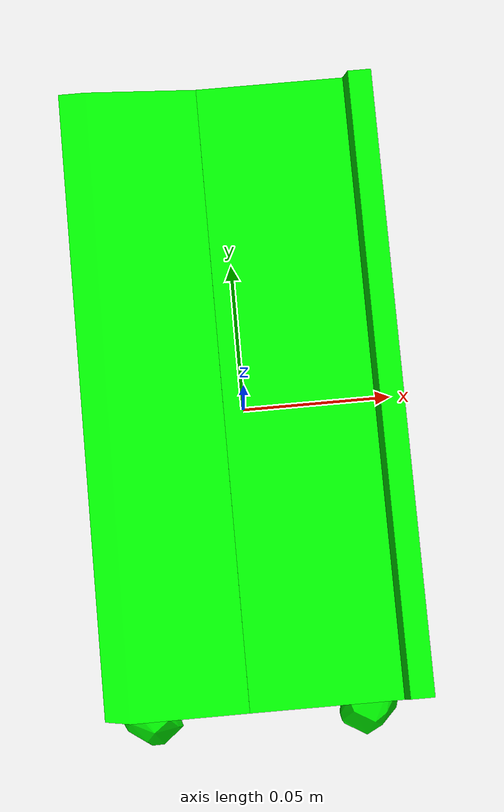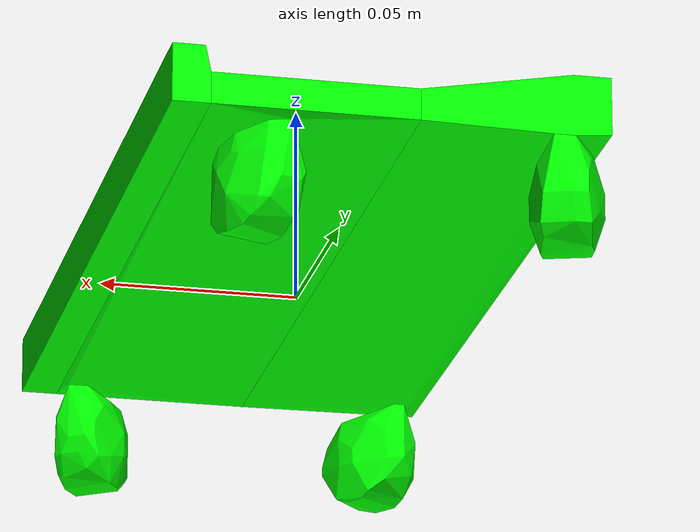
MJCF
<mujoco model="shapenetsem28">
  <asset>
    <mesh file="meshes/shapenetsem28/shapenetsem28_0.stl" name="shapenetsem28_0" scale="1 1 1"/>
    <mesh file="meshes/shapenetsem28/shapenetsem28_1.stl" name="shapenetsem28_1" scale="1 1 1"/>
    <mesh file="meshes/shapenetsem28/shapenetsem28_2.stl" name="shapenetsem28_2" scale="1 1 1"/>
    <mesh file="meshes/shapenetsem28/shapenetsem28_3.stl" name="shapenetsem28_3" scale="1 1 1"/>
    <mesh file="meshes/shapenetsem28/shapenetsem28_4.stl" name="shapenetsem28_4" scale="1 1 1"/>
    <mesh file="meshes/shapenetsem28/shapenetsem28_5.stl" name="shapenetsem28_5" scale="1 1 1"/>
    <mesh file="meshes/shapenetsem28/shapenetsem28_6.stl" name="shapenetsem28_6" scale="1 1 1"/>
  </asset>
  <worldbody>
    <body>
      <body name="collision">
        <geom pos="0 0 0" mesh="shapenetsem28_0" type="mesh" solimp="0.998 0.998 0.001" solref="0.001 1" density="100" friction="0.95 0.3 0.1" rgba="0 1 0 1" group="1" condim="4"/>
        <geom pos="0 0 0" mesh="shapenetsem28_1" type="mesh" solimp="0.998 0.998 0.001" solref="0.001 1" density="100" friction="0.95 0.3 0.1" rgba="0 1 0 1" group="1" condim="4"/>
        <geom pos="0 0 0" mesh="shapenetsem28_2" type="mesh" solimp="0.998 0.998 0.001" solref="0.001 1" density="100" friction="0.95 0.3 0.1" rgba="0 1 0 1" group="1" condim="4"/>
        <geom pos="0 0 0" mesh="shapenetsem28_3" type="mesh" solimp="0.998 0.998 0.001" solref="0.001 1" density="100" friction="0.95 0.3 0.1" rgba="0 1 0 1" group="1" condim="4"/>
        <geom pos="0 0 0" mesh="shapenetsem28_4" type="mesh" solimp="0.998 0.998 0.001" solref="0.001 1" density="100" friction="0.95 0.3 0.1" rgba="0 1 0 1" group="1" condim="4"/>
        <geom pos="0 0 0" mesh="shapenetsem28_5" type="mesh" solimp="0.998 0.998 0.001" solref="0.001 1" density="100" friction="0.95 0.3 0.1" rgba="0 1 0 1" group="1" condim="4"/>
        <geom pos="0 0 0" mesh="shapenetsem28_6" type="mesh" solimp="0.998 0.998 0.001" solref="0.001 1" density="100" friction="0.95 0.3 0.1" rgba="0 1 0 1" group="1" condim="4"/>
      </body>
      <body name="visual">
        <geom pos="0 0 0" mesh="shapenetsem28_0" type="mesh" rgba="0 1 0 1" conaffinity="0" contype="0" group="0" mass="0.0001"/>
        <geom pos="0 0 0" mesh="shapenetsem28_1" type="mesh" rgba="0 1 0 1" conaffinity="0" contype="0" group="0" mass="0.0001"/>
        <geom pos="0 0 0" mesh="shapenetsem28_2" type="mesh" rgba="0 1 0 1" conaffinity="0" contype="0" group="0" mass="0.0001"/>
        <geom pos="0 0 0" mesh="shapenetsem28_3" type="mesh" rgba="0 1 0 1" conaffinity="0" contype="0" group="0" mass="0.0001"/>
        <geom pos="0 0 0" mesh="shapenetsem28_4" type="mesh" rgba="0 1 0 1" conaffinity="0" contype="0" group="0" mass="0.0001"/>
        <geom pos="0 0 0" mesh="shapenetsem28_5" type="mesh" rgba="0 1 0 1" conaffinity="0" contype="0" group="0" mass="0.0001"/>
        <geom pos="0 0 0" mesh="shapenetsem28_6" type="mesh" rgba="0 1 0 1" conaffinity="0" contype="0" group="0" mass="0.0001"/>
      </body>
      <site rgba="0 0 0 0" size="0.005" pos="0 0 -0.06" name="bottom_site"/>
      <site rgba="0 0 0 0" size="0.005" pos="0 0 0.04" name="top_site"/>
      <site rgba="0 0 0 0" size="0.005" pos="0.025 0.025 0" name="horizontal_radius_site"/>
    </body>
  </worldbody>
</mujoco>
